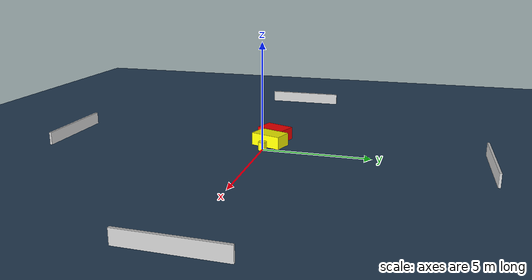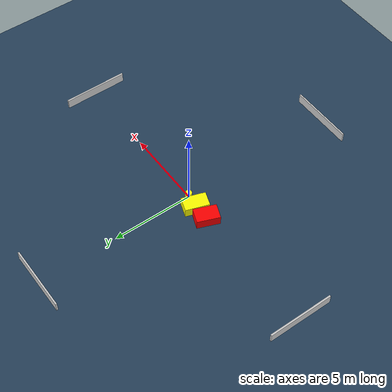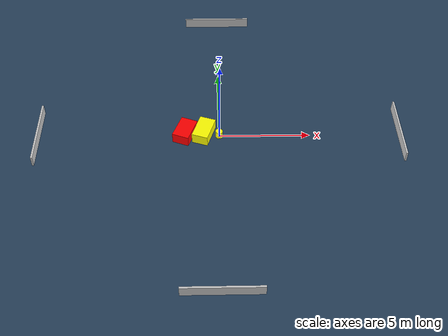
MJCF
<?xml version="1.0" ?>
<mujoco model="generated_environment">
  <option timestep="0.01" integrator="RK4" cone="elliptic"/>
  <default>
    <geom density="1"/>
  </default>
  <asset>
    <texture builtin="gradient" height="3072" name="skybox" rgb1="0.3 0.5 0.7" rgb2="0 0 0" type="skybox" width="512"/>
    <texture builtin="checker" height="300" name="groundplane" rgb1="0.2 0.3 0.4" rgb2="0.1 0.2 0.3" type="2d" width="300"/>
    <material name="groundplane" reflectance="0.2" texrepeat="5 5" texture="groundplane"/>
  </asset>
  <worldbody>
    <light dir="0 0 -1" directional="true" pos="0 0 1.5"/>
    <geom condim="3" friction="0.5 0.005 0.001" material="groundplane" name="floor" pos="0 0 0" size="0 0 0.05" type="plane"/>
    <body name="walls">
      <geom name="wall_1" condim="4" pos="-10.0 0.0 0.3" rgba="0.800000011920929 0.800000011920929 0.800000011920929 1.0" size="0.05 2.0 0.3" type="box"/>
      <geom name="wall_2" condim="4" pos="10.0 0.0 0.3" rgba="0.800000011920929 0.800000011920929 0.800000011920929 1.0" size="0.05 2.0 0.3" type="box"/>
      <geom name="wall_3" condim="4" pos="0.0 -10.0 0.3" rgba="0.800000011920929 0.800000011920929 0.800000011920929 1.0" size="2.0 0.05 0.3" type="box"/>
      <geom name="wall_4" condim="4" pos="0.0 10.0 0.3" rgba="0.800000011920929 0.800000011920929 0.800000011920929 1.0" size="2.0 0.05 0.3" type="box"/>
    </body>
    <body name="robot">
      <joint name="joint_x" type="slide" pos="0 0 0" axis="1 0 0"/>
      <joint name="joint_y" type="slide" pos="0 0 0" axis="0 1 0"/>
      <geom name="robot" type="cylinder" pos="0.0 0.0 0.2" size="0.2 0.2 0.0" mass="5.0" friction="1.0 0.005 0.0001" condim="4" rgba="1.0 1.0 0.0 1.0"/>
    </body>
    <body name="obstacle_1_movable">
      <geom name="obstacle_1_movable" condim="4" pos="-0.8451340220573335 0.14064895934358954 0.3" euler="0 0 161.24382479135497" friction="0.0 0.005 0.001" rgba="1.0 1.0 0.0 1.0" size="0.4489582015791683 0.7374628752408969 0.3" type="box" mass="0.1"/>
      <joint type="free"/>
    </body>
    <body name="obstacle_2_static">
      <geom name="obstacle_2_static" condim="4" pos="-1.8899194948497204 0.11913358119274772 0.3" euler="0 0 158.92216104902468" friction="0.0 0.005 0.001" rgba="1.0 0.0 0.0 1.0" size="0.465610847107401 0.7026062275607405 0.3" type="box"/>
    </body>
  </worldbody>
  <actuator>
    <motor name="actuator_x" joint="joint_x" gear="1" ctrlrange="-1 1"/>
    <motor name="actuator_y" joint="joint_y" gear="1" ctrlrange="-1 1"/>
  </actuator>
</mujoco>
